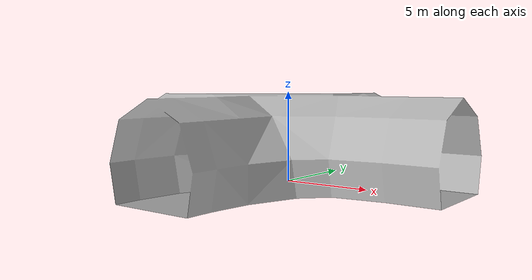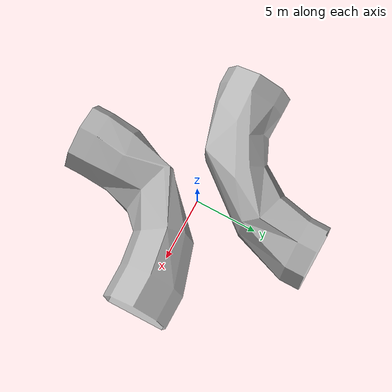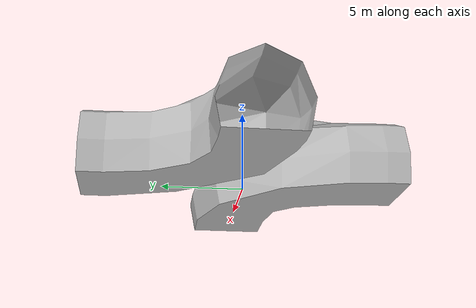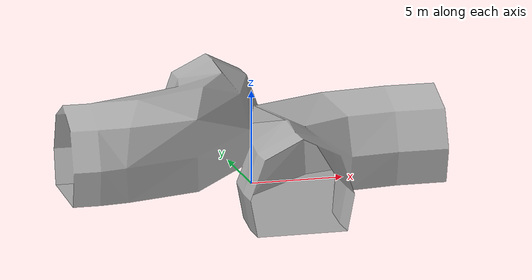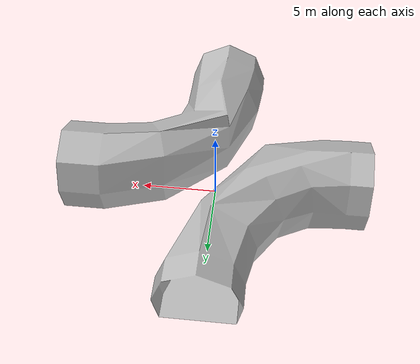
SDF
<?xml version="1.0" ?>
<sdf version="1.6">
  <model name="cave_tile_2">
    <static>true</static>
    <link name="link">
      <pose>0 0 0 1.570796 0 0</pose>
      <collision name="collision">
        <geometry>
          <mesh>
            <uri>model://cave_tile_2/meshes/cave_tile_2.obj</uri>
          </mesh>
        </geometry>
      </collision>
      <visual name="visual">
        <geometry>
          <mesh>
            <uri>model://cave_tile_2/meshes/cave_tile_2.obj</uri>
          </mesh>
        </geometry>
      </visual>
    </link>
  </model>
</sdf>
